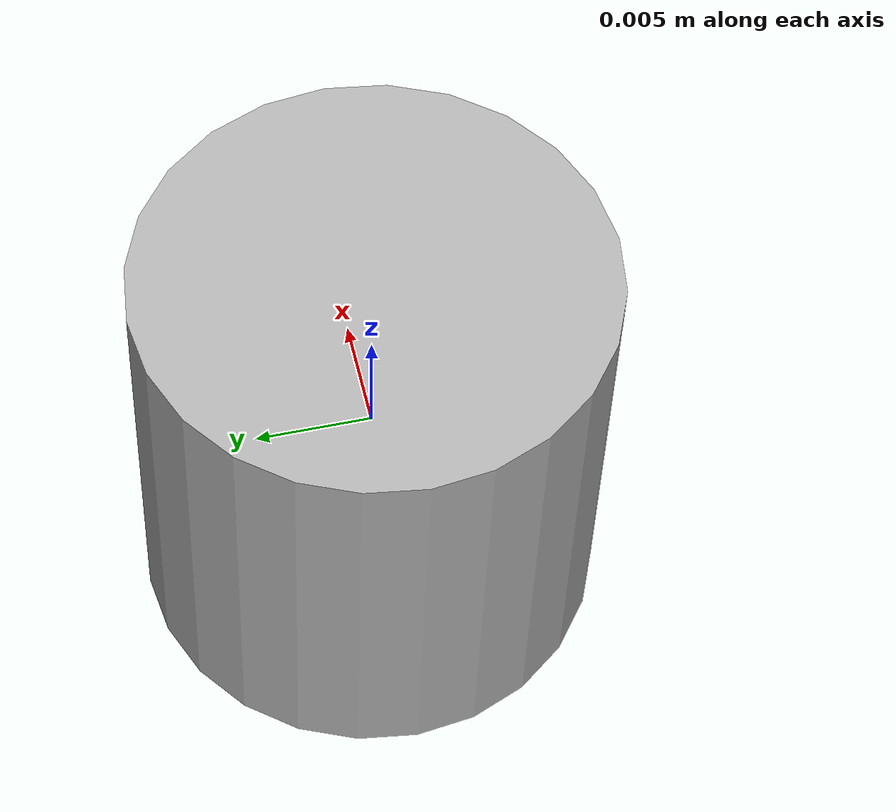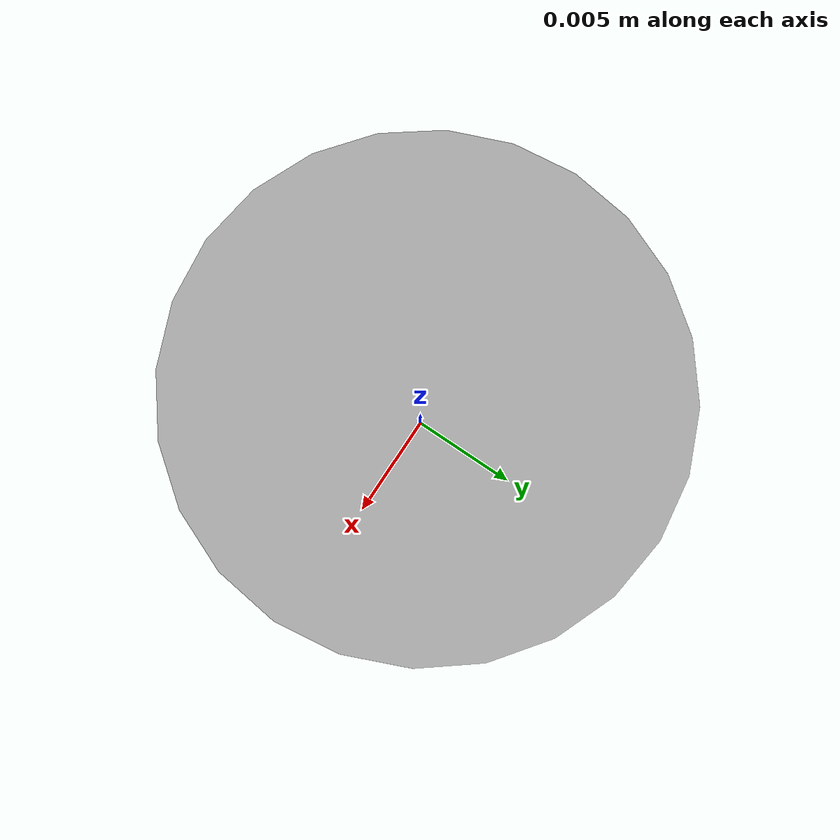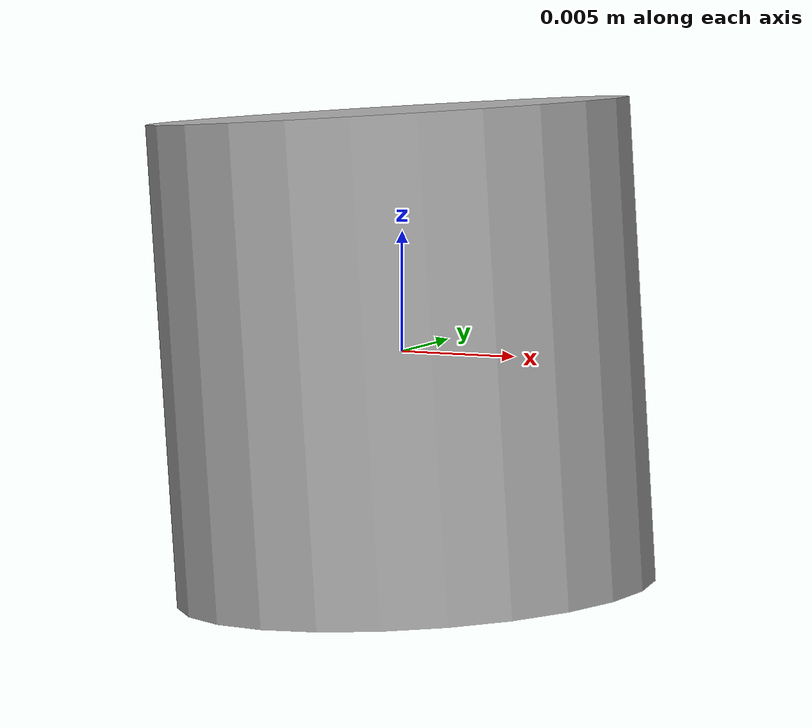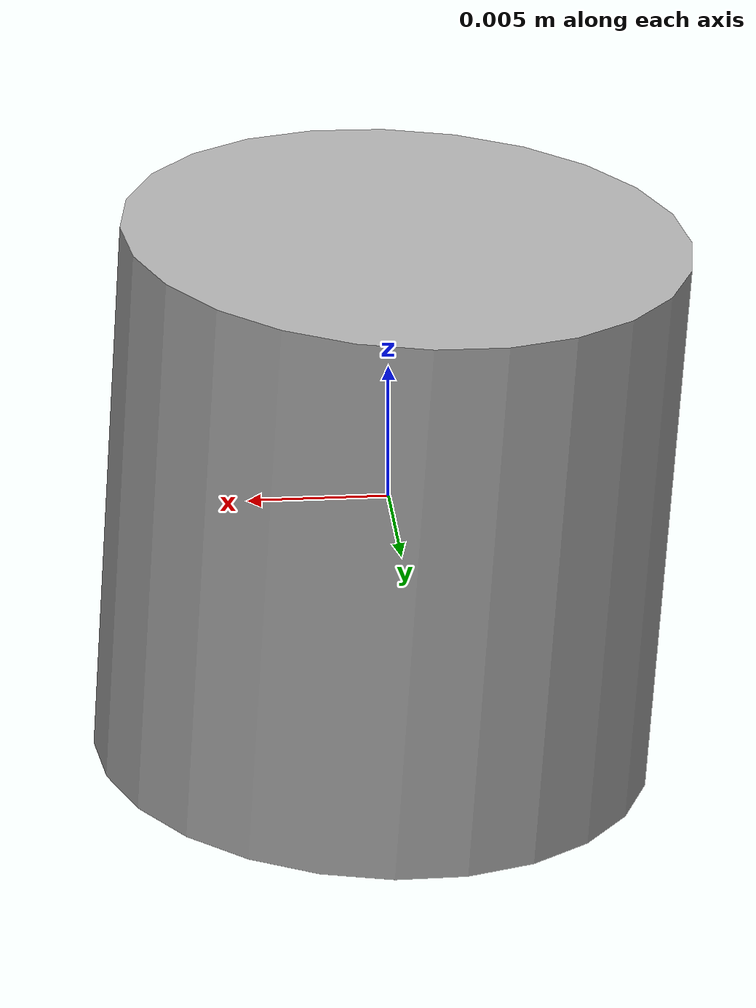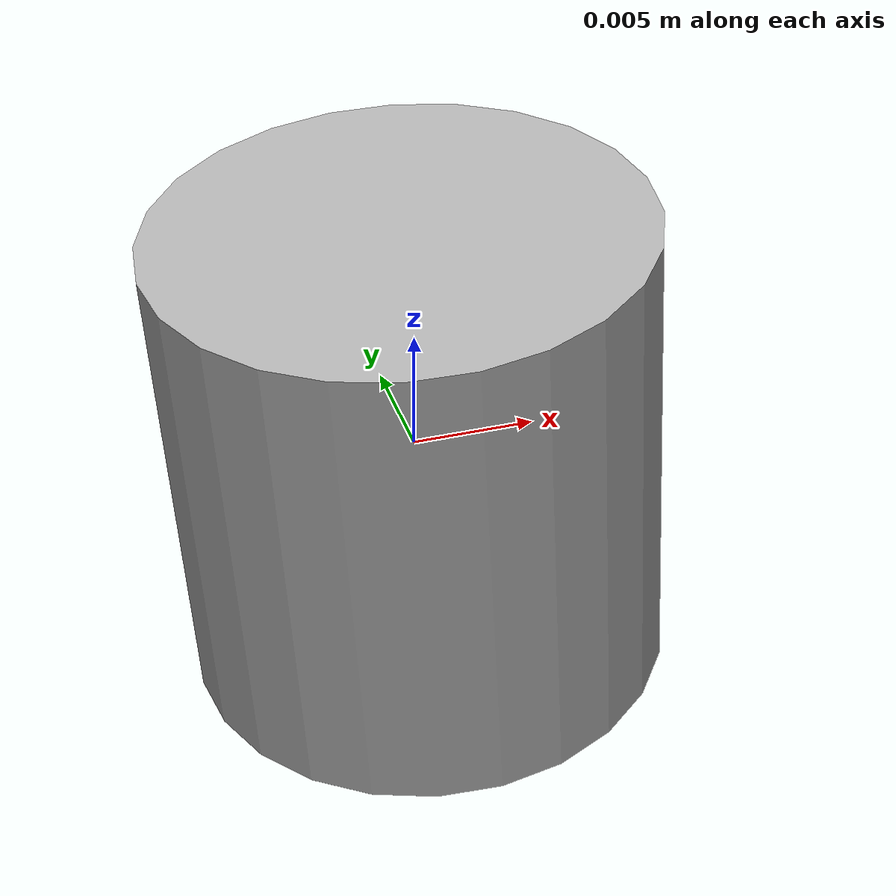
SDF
<?xml version="1.0"?>
<sdf version="1.8">
  <model name="lidar">
    <link name="lidar_link">
      <pose relative_to='__model__'>0 0 0 0 0.065 3.14159265359</pose>
      <inertial>
        <mass>0.001</mass> <!-- Ajuste a massa conforme necessário -->
        <inertia>
          <ixx>1.0E-06</ixx>
          <iyy>1.0E-06</iyy>
          <izz>1.0E-06</izz>
        </inertia>
      </inertial>
      <visual name='visual'>
        <geometry>
          <cylinder>
            <radius>0.01</radius>
            <length>0.02</length>
          </cylinder>
        </geometry>
        <material>
          <ambient>0.5 0.5 0.5 1</ambient>
          <diffuse>0.7 0.7 0.7 1</diffuse>
          <specular>0.2 0.2 0.2 1</specular>
        </material>
      </visual>
      <collision name='collision'>
        <geometry>
          <cylinder>
            <radius>0.01</radius>
            <length>0.02</length>
          </cylinder>
        </geometry>
      </collision>
      <sensor name='gpu_lidar' type='gpu_lidar'>
        <topic>/lidar</topic>
        <update_rate>50</update_rate>
        <lidar>
          <scan>
            <horizontal>
              <samples>13</samples> <!-- quantidade de raios -->
              <resolution>1</resolution>
              <min_angle>-2.356194</min_angle> <!-- -135 graus em radianos -->
              <max_angle>2.356194</max_angle> <!-- 135 graus em radianos -->
            </horizontal>
          </scan>
          <!-- ... configurações de varredura ... -->
          <range>
            <min>0.15</min> <!-- Distância mínima em metros -->
            <max>1.5</max>  <!-- Distância máxima em metros -->
            <resolution>0.01</resolution>
          </range>
        </lidar>
        <visualize>true</visualize>
      </sensor>
    </link>
  </model>
</sdf>
